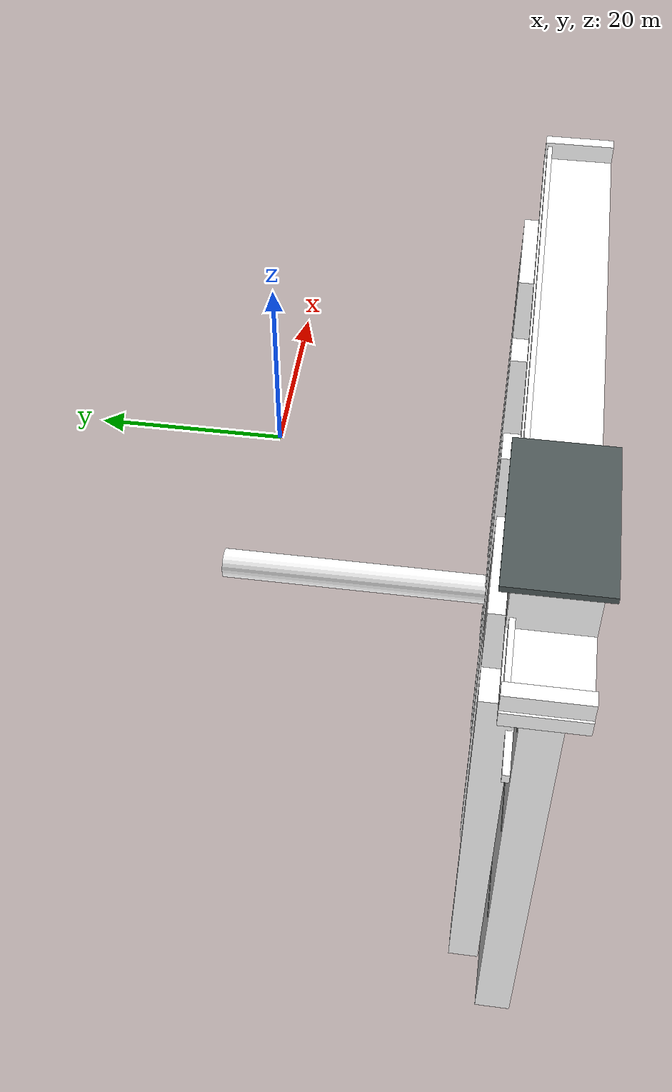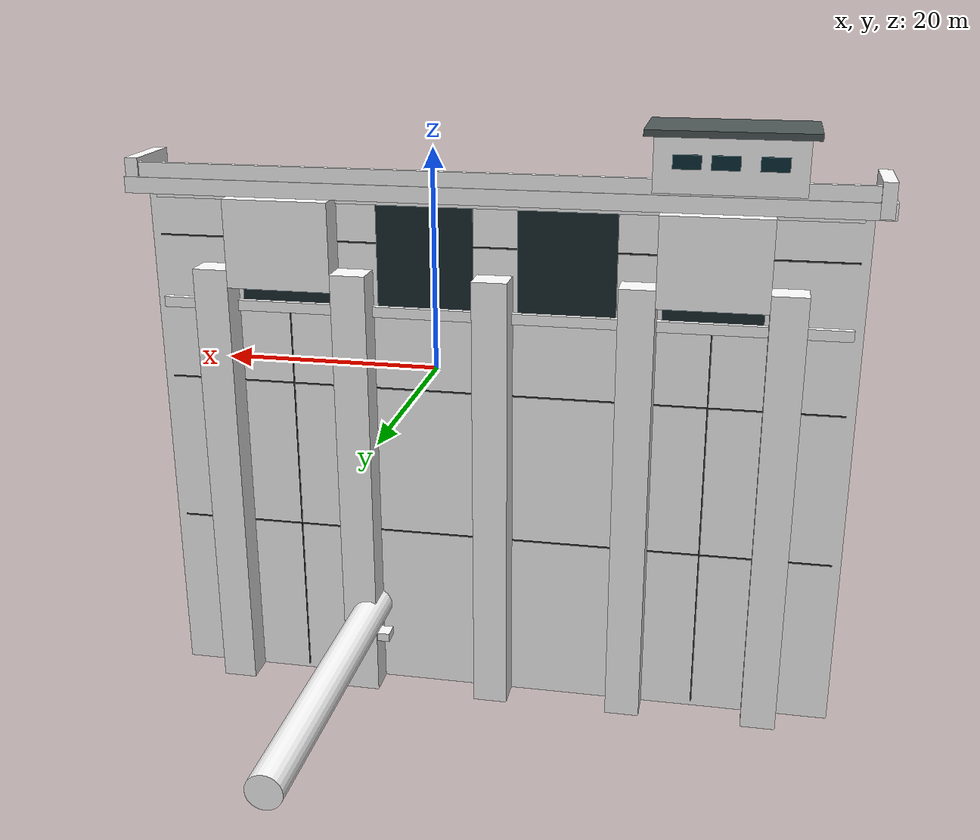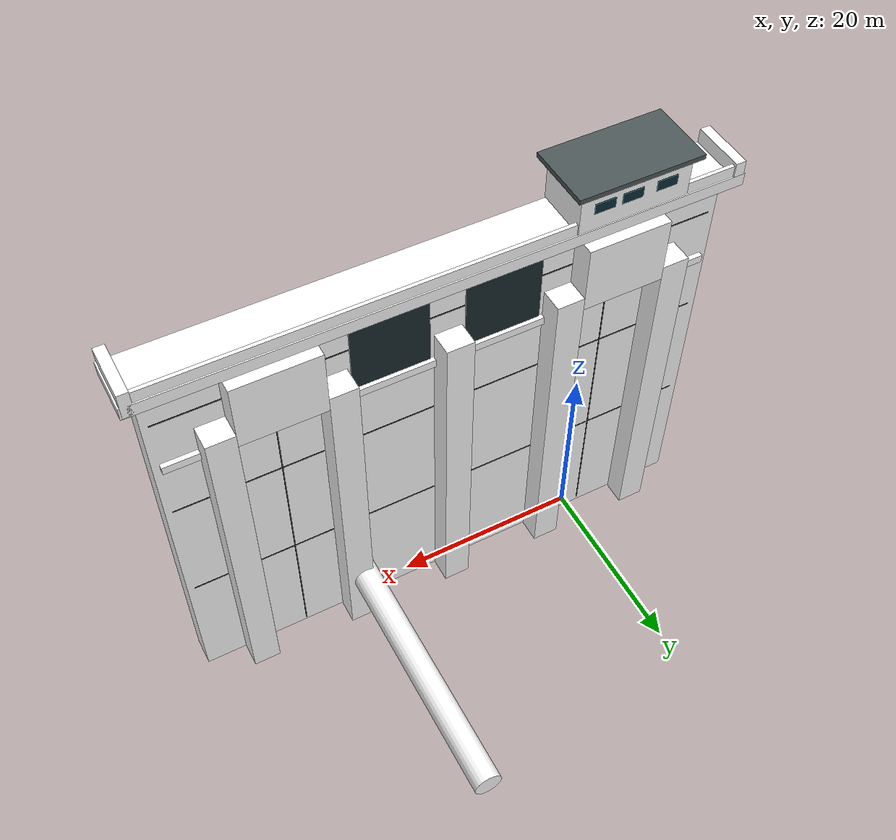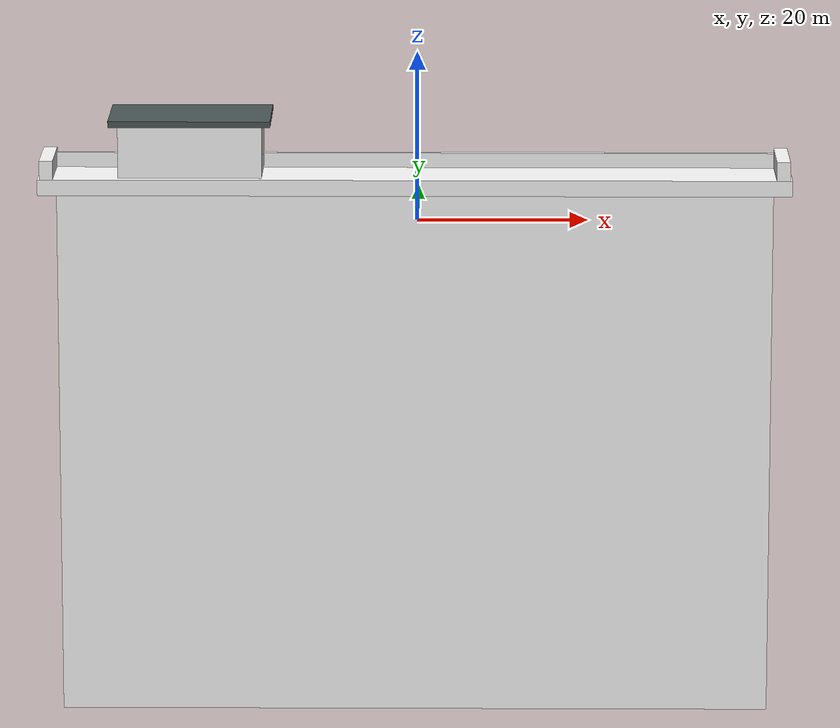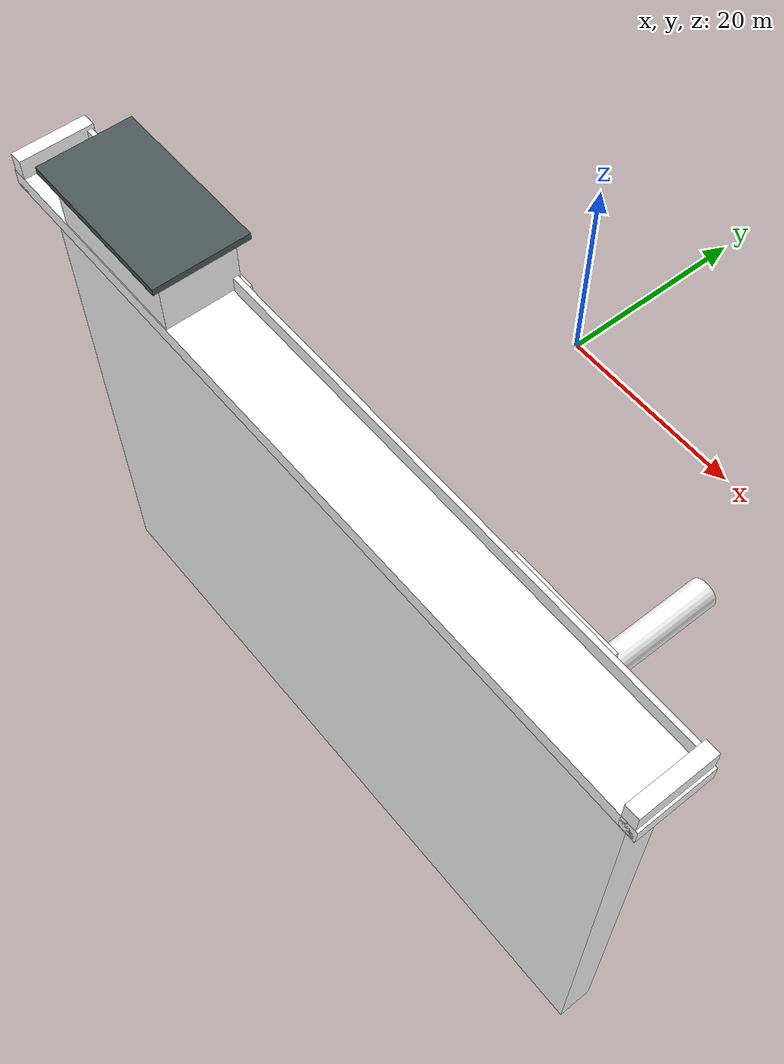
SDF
<sdf version="1.9">
 <world name="ocean">
  <physics name="physics" type="ode">
   <max_step_size>0.004</max_step_size>
   <real_time_factor>1.0</real_time_factor>
  </physics>
  <plugin filename="gz-sim-physics-system" name="gz::sim::systems::Physics"/>
  <plugin filename="gz-sim-scene-broadcaster-system" name="gz::sim::systems::SceneBroadcaster"/>
  <plugin filename="gz-sim-user-commands-system" name="gz::sim::systems::UserCommands"/>
  <plugin filename="gz-sim-sensors-system" name="gz::sim::systems::Sensors">
   <render_engine>ogre2</render_engine>
  </plugin>
  <plugin filename="gz-sim-buoyancy-system" name="gz::sim::systems::Buoyancy">
   <uniform_fluid_density>1000</uniform_fluid_density>
  </plugin>
  <light name="sun" type="directional">
   <pose>0 0 100 0 0 0</pose>
   <diffuse>1 1 1 1</diffuse>
   <specular>0.2 0.2 0.2 1</specular>
   <direction>-0.5 0.1 -1</direction>
  </light>
  <scene>
   <ambient>0.15 0.28 0.35 1</ambient>
   <background>0.02 0.18 0.28 1</background>
   <fog>
    <color>0.05 0.22 0.3 1</color>
    <type>exp2</type>
    <density>0.018</density>
    <start>2</start>
    <end>45</end>
   </fog>
   <grid>false</grid>
  </scene>
  <include><uri>model://dam_structure</uri></include>
 </world>
</sdf>

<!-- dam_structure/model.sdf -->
<sdf version="1.9">
  <model name="dam_structure">
    <static>true</static>

    <link name="dam_wall">
      <pose>0 -30 -20 0 0 0</pose>
      <inertial>
        <mass>1.0</mass>
        <inertia>
          <ixx>1.0</ixx><iyy>1.0</iyy><izz>1.0</izz>
          <ixy>0</ixy><ixz>0</ixz><iyz>0</iyz>
        </inertia>
      </inertial>
      <collision name="dam_wall_collision">
        <geometry>
          <box>
            <size>80 4 60</size>
          </box>
        </geometry>
      </collision>
      <visual name="dam_wall_visual">
        <geometry>
          <box>
            <size>80 4 60</size>
          </box>
        </geometry>
        <material>
          <ambient>0.55 0.55 0.5 1</ambient>
          <diffuse>1.0 1.0 1.0 1</diffuse>
          <specular>0.15 0.15 0.15 1</specular>
          <pbr>
            <metal>
              <albedo_map>materials/textures/concrete_albedo.png</albedo_map>
              <normal_map>materials/textures/concrete_normal.png</normal_map>
              <roughness_map>materials/textures/concrete_roughness.png</roughness_map>
            </metal>
          </pbr>
        </material>
      </visual>
    </link>

    <link name="downstream_buttresses">
      <visual name="buttress_left_outer">
        <pose>-32 -26.1 -24 0 0 0</pose>
        <geometry><box><size>4.0 3.5 52</size></box></geometry>
        <material>
          <ambient>0.52 0.52 0.48 1</ambient>
          <diffuse>1 1 1 1</diffuse>
          <specular>0.12 0.12 0.12 1</specular>
          <pbr><metal>
            <albedo_map>materials/textures/concrete_albedo.png</albedo_map>
            <normal_map>materials/textures/concrete_normal.png</normal_map>
            <roughness_map>materials/textures/concrete_roughness.png</roughness_map>
          </metal></pbr>
        </material>
      </visual>
      <visual name="buttress_left_inner">
        <pose>-16 -26.1 -24 0 0 0</pose>
        <geometry><box><size>4.0 3.5 52</size></box></geometry>
        <material>
          <ambient>0.52 0.52 0.48 1</ambient><diffuse>1 1 1 1</diffuse>
          <specular>0.12 0.12 0.12 1</specular>
          <pbr><metal>
            <albedo_map>materials/textures/concrete_albedo.png</albedo_map>
            <normal_map>materials/textures/concrete_normal.png</normal_map>
            <roughness_map>materials/textures/concrete_roughness.png</roughness_map>
          </metal></pbr>
        </material>
      </visual>
      <visual name="buttress_center">
        <pose>0 -26.1 -24 0 0 0</pose>
        <geometry><box><size>4.0 3.5 52</size></box></geometry>
        <material>
          <ambient>0.52 0.52 0.48 1</ambient><diffuse>1 1 1 1</diffuse>
          <specular>0.12 0.12 0.12 1</specular>
          <pbr><metal>
            <albedo_map>materials/textures/concrete_albedo.png</albedo_map>
            <normal_map>materials/textures/concrete_normal.png</normal_map>
            <roughness_map>materials/textures/concrete_roughness.png</roughness_map>
          </metal></pbr>
        </material>
      </visual>
      <visual name="buttress_right_inner">
        <pose>16 -26.1 -24 0 0 0</pose>
        <geometry><box><size>4.0 3.5 52</size></box></geometry>
        <material>
          <ambient>0.52 0.52 0.48 1</ambient><diffuse>1 1 1 1</diffuse>
          <specular>0.12 0.12 0.12 1</specular>
          <pbr><metal>
            <albedo_map>materials/textures/concrete_albedo.png</albedo_map>
            <normal_map>materials/textures/concrete_normal.png</normal_map>
            <roughness_map>materials/textures/concrete_roughness.png</roughness_map>
          </metal></pbr>
        </material>
      </visual>
      <visual name="buttress_right_outer">
        <pose>32 -26.1 -24 0 0 0</pose>
        <geometry><box><size>4.0 3.5 52</size></box></geometry>
        <material>
          <ambient>0.52 0.52 0.48 1</ambient><diffuse>1 1 1 1</diffuse>
          <specular>0.12 0.12 0.12 1</specular>
          <pbr><metal>
            <albedo_map>materials/textures/concrete_albedo.png</albedo_map>
            <normal_map>materials/textures/concrete_normal.png</normal_map>
            <roughness_map>materials/textures/concrete_roughness.png</roughness_map>
          </metal></pbr>
        </material>
      </visual>

      <!-- Short upper returns give the ribs a stepped, poured-concrete shape. -->
      <visual name="upper_return_left">
        <pose>-24 -26.1 5 0 0 0</pose>
        <geometry><box><size>12 3.5 10</size></box></geometry>
        <material>
          <ambient>0.52 0.52 0.48 1</ambient><diffuse>1 1 1 1</diffuse>
          <pbr><metal>
            <albedo_map>materials/textures/concrete_albedo.png</albedo_map>
            <normal_map>materials/textures/concrete_normal.png</normal_map>
            <roughness_map>materials/textures/concrete_roughness.png</roughness_map>
          </metal></pbr>
        </material>
      </visual>
      <visual name="upper_return_right">
        <pose>24 -26.1 5 0 0 0</pose>
        <geometry><box><size>12 3.5 10</size></box></geometry>
        <material>
          <ambient>0.52 0.52 0.48 1</ambient><diffuse>1 1 1 1</diffuse>
          <pbr><metal>
            <albedo_map>materials/textures/concrete_albedo.png</albedo_map>
            <normal_map>materials/textures/concrete_normal.png</normal_map>
            <roughness_map>materials/textures/concrete_roughness.png</roughness_map>
          </metal></pbr>
        </material>
      </visual>
    </link>

    <!-- Horizontal construction joints and darker panel seams add scale to
         the concrete face without needing a large decal or mesh asset. -->
    <link name="dam_face_joints">
      <visual name="joint_upper">
        <pose>0 -27.96 5.0 0 0 0</pose>
        <geometry><box><size>78 0.06 0.16</size></box></geometry>
        <material><ambient>0.16 0.18 0.17 1</ambient><diffuse>0.25 0.27 0.26 1</diffuse></material>
      </visual>
      <visual name="joint_middle">
        <pose>0 -27.96 -12.0 0 0 0</pose>
        <geometry><box><size>78 0.06 0.16</size></box></geometry>
        <material><ambient>0.16 0.18 0.17 1</ambient><diffuse>0.25 0.27 0.26 1</diffuse></material>
      </visual>
      <visual name="joint_lower">
        <pose>0 -27.96 -30.0 0 0 0</pose>
        <geometry><box><size>78 0.06 0.16</size></box></geometry>
        <material><ambient>0.16 0.18 0.17 1</ambient><diffuse>0.25 0.27 0.26 1</diffuse></material>
      </visual>
      <visual name="joint_left">
        <pose>-24 -27.95 -21 0 0 0</pose>
        <geometry><box><size>0.14 0.06 57</size></box></geometry>
        <material><ambient>0.16 0.18 0.17 1</ambient><diffuse>0.25 0.27 0.26 1</diffuse></material>
      </visual>
      <visual name="joint_right">
        <pose>24 -27.95 -21 0 0 0</pose>
        <geometry><box><size>0.14 0.06 57</size></box></geometry>
        <material><ambient>0.16 0.18 0.17 1</ambient><diffuse>0.25 0.27 0.26 1</diffuse></material>
      </visual>
    </link>

    <!-- Crest deck, upstream/downstream parapets, and a small control building
         create the unmistakable top profile of a concrete dam. -->
    <link name="dam_crest">
      <visual name="crest_cap">
        <pose>0 -30 10.9 0 0 0</pose>
        <geometry><box><size>84 8 1.8</size></box></geometry>
        <material>
          <ambient>0.58 0.58 0.54 1</ambient><diffuse>1 1 1 1</diffuse>
          <specular>0.18 0.18 0.18 1</specular>
          <pbr><metal>
            <albedo_map>materials/textures/concrete_albedo.png</albedo_map>
            <normal_map>materials/textures/concrete_normal.png</normal_map>
            <roughness_map>materials/textures/concrete_roughness.png</roughness_map>
          </metal></pbr>
        </material>
      </visual>
      <visual name="downstream_parapet">
        <pose>0 -26.5 12.35 0 0 0</pose>
        <geometry><box><size>82 0.55 2.2</size></box></geometry>
        <material>
          <ambient>0.52 0.52 0.48 1</ambient><diffuse>1 1 1 1</diffuse>
          <pbr><metal>
            <albedo_map>materials/textures/concrete_albedo.png</albedo_map>
            <normal_map>materials/textures/concrete_normal.png</normal_map>
            <roughness_map>materials/textures/concrete_roughness.png</roughness_map>
          </metal></pbr>
        </material>
      </visual>
      <visual name="crest_end_left">
        <pose>-41 -30 12.0 0 0 0</pose>
        <geometry><box><size>1.5 8 3.8</size></box></geometry>
        <material>
          <ambient>0.52 0.52 0.48 1</ambient><diffuse>1 1 1 1</diffuse>
          <pbr><metal>
            <albedo_map>materials/textures/concrete_albedo.png</albedo_map>
            <normal_map>materials/textures/concrete_normal.png</normal_map>
            <roughness_map>materials/textures/concrete_roughness.png</roughness_map>
          </metal></pbr>
        </material>
      </visual>
      <visual name="crest_end_right">
        <pose>41 -30 12.0 0 0 0</pose>
        <geometry><box><size>1.5 8 3.8</size></box></geometry>
        <material>
          <ambient>0.52 0.52 0.48 1</ambient><diffuse>1 1 1 1</diffuse>
          <pbr><metal>
            <albedo_map>materials/textures/concrete_albedo.png</albedo_map>
            <normal_map>materials/textures/concrete_normal.png</normal_map>
            <roughness_map>materials/textures/concrete_roughness.png</roughness_map>
          </metal></pbr>
        </material>
      </visual>
    </link>

    <!-- Four dark gate faces and their concrete piers suggest spillway bays.
         They are placed on the downstream face above the inspection zone. -->
    <link name="spillway_bays">
      <visual name="spillway_gate_left_outer">
        <pose>-24 -27.91 3.5 0 0 0</pose>
        <geometry><box><size>11.0 0.12 12.0</size></box></geometry>
        <material>
          <ambient>0.04 0.07 0.08 1</ambient><diffuse>0.10 0.16 0.18 1</diffuse>
          <specular>0.55 0.6 0.6 1</specular>
          <pbr><metal>
            <albedo_map>materials/textures/rusty_metal_albedo.png</albedo_map>
            <normal_map>materials/textures/rusty_metal_normal.png</normal_map>
            <roughness_map>materials/textures/rusty_metal_roughness.png</roughness_map>
            <metalness_map>materials/textures/rusty_metal_metalness.png</metalness_map>
          </metal></pbr>
        </material>
      </visual>
      <visual name="spillway_gate_left_inner">
        <pose>-8 -27.91 3.5 0 0 0</pose>
        <geometry><box><size>11.0 0.12 12.0</size></box></geometry>
        <material>
          <ambient>0.04 0.07 0.08 1</ambient><diffuse>0.10 0.16 0.18 1</diffuse>
          <specular>0.55 0.6 0.6 1</specular>
          <pbr><metal>
            <albedo_map>materials/textures/rusty_metal_albedo.png</albedo_map>
            <normal_map>materials/textures/rusty_metal_normal.png</normal_map>
            <roughness_map>materials/textures/rusty_metal_roughness.png</roughness_map>
            <metalness_map>materials/textures/rusty_metal_metalness.png</metalness_map>
          </metal></pbr>
        </material>
      </visual>
      <visual name="spillway_gate_right_inner">
        <pose>8 -27.91 3.5 0 0 0</pose>
        <geometry><box><size>11.0 0.12 12.0</size></box></geometry>
        <material>
          <ambient>0.04 0.07 0.08 1</ambient><diffuse>0.10 0.16 0.18 1</diffuse>
          <specular>0.55 0.6 0.6 1</specular>
          <pbr><metal>
            <albedo_map>materials/textures/rusty_metal_albedo.png</albedo_map>
            <normal_map>materials/textures/rusty_metal_normal.png</normal_map>
            <roughness_map>materials/textures/rusty_metal_roughness.png</roughness_map>
            <metalness_map>materials/textures/rusty_metal_metalness.png</metalness_map>
          </metal></pbr>
        </material>
      </visual>
      <visual name="spillway_gate_right_outer">
        <pose>24 -27.91 3.5 0 0 0</pose>
        <geometry><box><size>11.0 0.12 12.0</size></box></geometry>
        <material>
          <ambient>0.04 0.07 0.08 1</ambient><diffuse>0.10 0.16 0.18 1</diffuse>
          <specular>0.55 0.6 0.6 1</specular>
          <pbr><metal>
            <albedo_map>materials/textures/rusty_metal_albedo.png</albedo_map>
            <normal_map>materials/textures/rusty_metal_normal.png</normal_map>
            <roughness_map>materials/textures/rusty_metal_roughness.png</roughness_map>
            <metalness_map>materials/textures/rusty_metal_metalness.png</metalness_map>
          </metal></pbr>
        </material>
      </visual>

      <visual name="spillway_header">
        <pose>0 -27.82 9.9 0 0 0</pose>
        <geometry><box><size>78 0.45 1.1</size></box></geometry>
        <material>
          <ambient>0.48 0.48 0.44 1</ambient><diffuse>1 1 1 1</diffuse>
          <pbr><metal>
            <albedo_map>materials/textures/concrete_albedo.png</albedo_map>
            <normal_map>materials/textures/concrete_normal.png</normal_map>
            <roughness_map>materials/textures/concrete_roughness.png</roughness_map>
          </metal></pbr>
        </material>
      </visual>
      <visual name="spillway_sill">
        <pose>0 -27.75 -2.75 0 0 0</pose>
        <geometry><box><size>78 1.0 1.2</size></box></geometry>
        <material>
          <ambient>0.48 0.48 0.44 1</ambient><diffuse>1 1 1 1</diffuse>
          <pbr><metal>
            <albedo_map>materials/textures/concrete_albedo.png</albedo_map>
            <normal_map>materials/textures/concrete_normal.png</normal_map>
            <roughness_map>materials/textures/concrete_roughness.png</roughness_map>
          </metal></pbr>
        </material>
      </visual>
    </link>

    <link name="crest_control_building">
      <visual name="control_room">
        <pose>-25 -30 15.0 0 0 0</pose>
        <geometry><box><size>16 8 6</size></box></geometry>
        <material>
          <ambient>0.48 0.48 0.45 1</ambient><diffuse>1 1 1 1</diffuse>
          <pbr><metal>
            <albedo_map>materials/textures/concrete_albedo.png</albedo_map>
            <normal_map>materials/textures/concrete_normal.png</normal_map>
            <roughness_map>materials/textures/concrete_roughness.png</roughness_map>
          </metal></pbr>
        </material>
      </visual>
      <visual name="control_room_roof">
        <pose>-25 -30 18.25 0 0 0</pose>
        <geometry><box><size>18 10 0.7</size></box></geometry>
        <material>
          <ambient>0.18 0.2 0.2 1</ambient><diffuse>0.3 0.34 0.34 1</diffuse>
          <specular>0.5 0.5 0.5 1</specular>
          <pbr><metal>
            <albedo_map>materials/textures/rusty_metal_albedo.png</albedo_map>
            <normal_map>materials/textures/rusty_metal_normal.png</normal_map>
            <roughness_map>materials/textures/rusty_metal_roughness.png</roughness_map>
            <metalness_map>materials/textures/rusty_metal_metalness.png</metalness_map>
          </metal></pbr>
        </material>
      </visual>
      <visual name="control_window_left">
        <pose>-29.5 -25.94 15.3 0 0 0</pose>
        <geometry><box><size>3.0 0.10 1.5</size></box></geometry>
        <material><ambient>0.02 0.08 0.1 1</ambient><diffuse>0.04 0.18 0.22 1</diffuse><specular>0.7 0.8 0.8 1</specular></material>
      </visual>
      <visual name="control_window_right">
        <pose>-24.5 -25.94 15.3 0 0 0</pose>
        <geometry><box><size>3.0 0.10 1.5</size></box></geometry>
        <material><ambient>0.02 0.08 0.1 1</ambient><diffuse>0.04 0.18 0.22 1</diffuse><specular>0.7 0.8 0.8 1</specular></material>
      </visual>
      <visual name="control_window_far">
        <pose>-20.5 -25.94 15.3 0 0 0</pose>
        <geometry><box><size>3.0 0.10 1.5</size></box></geometry>
        <material><ambient>0.02 0.08 0.1 1</ambient><diffuse>0.04 0.18 0.22 1</diffuse><specular>0.7 0.8 0.8 1</specular></material>
      </visual>
    </link>

    <!-- Pipeline section running away from the dam face for the AUVs to
         inspect along its length, in addition to the wall face. -->
    <link name="pipe_section">
      <pose>15 -8 -40 -1.5708 0 0</pose>
      <inertial>
        <mass>1.0</mass>
        <inertia>
          <ixx>1.0</ixx><iyy>1.0</iyy><izz>1.0</izz>
          <ixy>0</ixy><ixz>0</ixz><iyz>0</iyz>
        </inertia>
      </inertial>
      <collision name="pipe_collision">
        <geometry>
          <cylinder>
            <radius>2</radius>
            <length>40</length>
          </cylinder>
        </geometry>
      </collision>
      <visual name="pipe_visual">
        <geometry>
          <cylinder>
            <radius>2</radius>
            <length>40</length>
          </cylinder>
        </geometry>
        <material>
          <ambient>0.35 0.35 0.4 1</ambient>
          <diffuse>1.0 1.0 1.0 1</diffuse>
          <specular>0.3 0.3 0.3 1</specular>
          <pbr>
            <metal>
              <albedo_map>materials/textures/rusty_metal_albedo.png</albedo_map>
              <normal_map>materials/textures/rusty_metal_normal.png</normal_map>
              <roughness_map>materials/textures/rusty_metal_roughness.png</roughness_map>
              <metalness_map>materials/textures/rusty_metal_metalness.png</metalness_map>
            </metal>
          </pbr>
        </material>
      </visual>
    </link>

    <!-- Heavy flange and dark intake mouth at the pipe's dam-side end. -->
    <link name="pipe_intake_details">
      <visual name="pipe_wall_flange">
        <pose>15 -28.35 -40 -1.5708 0 0</pose>
        <geometry><cylinder><radius>2.55</radius><length>0.65</length></cylinder></geometry>
        <material>
          <ambient>0.22 0.24 0.25 1</ambient><diffuse>0.7 0.72 0.7 1</diffuse>
          <specular>0.45 0.45 0.45 1</specular>
          <pbr><metal>
            <albedo_map>materials/textures/rusty_metal_albedo.png</albedo_map>
            <normal_map>materials/textures/rusty_metal_normal.png</normal_map>
            <roughness_map>materials/textures/rusty_metal_roughness.png</roughness_map>
            <metalness_map>materials/textures/rusty_metal_metalness.png</metalness_map>
          </metal></pbr>
        </material>
      </visual>
      <visual name="pipe_intake_mouth">
        <pose>15 -28.72 -40 -1.5708 0 0</pose>
        <geometry><cylinder><radius>1.95</radius><length>0.10</length></cylinder></geometry>
        <material><ambient>0.015 0.025 0.03 1</ambient><diffuse>0.025 0.06 0.07 1</diffuse><specular>0.15 0.2 0.2 1</specular></material>
      </visual>
      <visual name="pipe_support_lower">
        <pose>15 -25.5 -42.8 0 0 0</pose>
        <geometry><box><size>5.0 2.0 1.0</size></box></geometry>
        <material>
          <ambient>0.45 0.45 0.42 1</ambient><diffuse>1 1 1 1</diffuse>
          <pbr><metal>
            <albedo_map>materials/textures/concrete_albedo.png</albedo_map>
            <normal_map>materials/textures/concrete_normal.png</normal_map>
            <roughness_map>materials/textures/concrete_roughness.png</roughness_map>
          </metal></pbr>
        </material>
      </visual>
    </link>
  </model>
</sdf>
